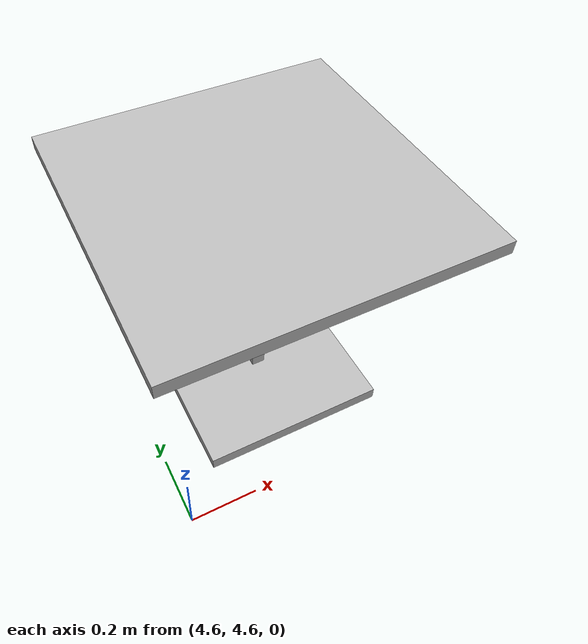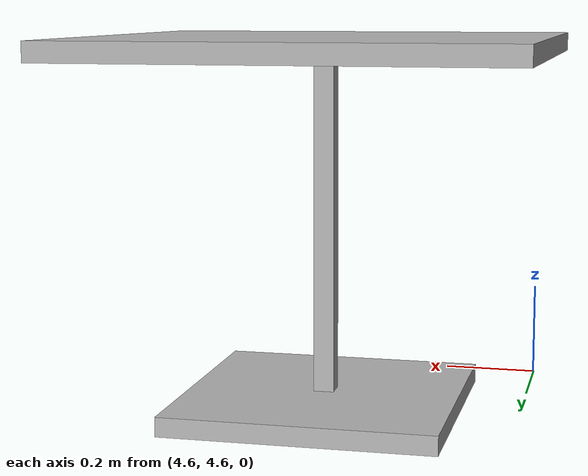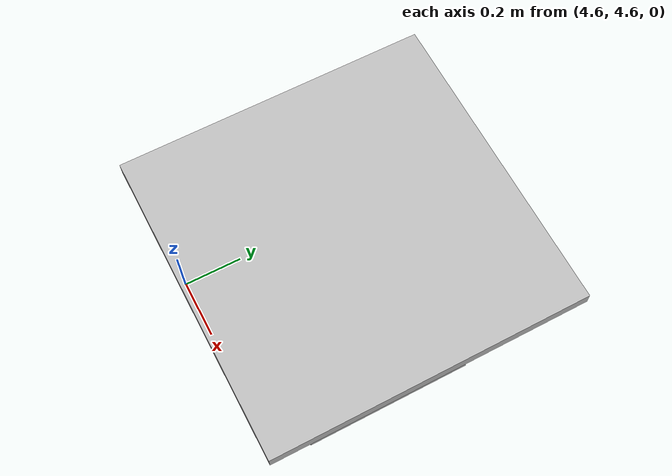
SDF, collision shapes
<?xml version="1.0" ?>
<sdf version="1.5">
  <model name="cafe_table">
    <static>true</static>
    <link name="link">
      <pose frame=''>5 5 0 0 -0 0</pose>
      <collision name="surface">
        <pose>0 0 0.755 0 0 0</pose>
        <geometry>
          <box>
            <size>0.913 0.913 0.04</size>
          </box>
        </geometry>
      </collision>

      <collision name="column">
        <pose>0 0 0.37 0 0 0</pose>
        <geometry>
          <box>
            <size>0.042 0.042 0.74</size>
          </box>
        </geometry>
      </collision>

      <collision name="base">
        <pose>0 0 0.02 0 0 0</pose>
        <geometry>
          <box>
            <size>0.56 0.56 0.04</size>
          </box>
        </geometry>
      </collision>

      <visual name="visual">
        <geometry>
          <mesh>
            <uri>model://cafe_table/meshes/cafe_table.dae</uri>
          </mesh>
        </geometry>
      </visual>
    </link>
  </model>
</sdf>
